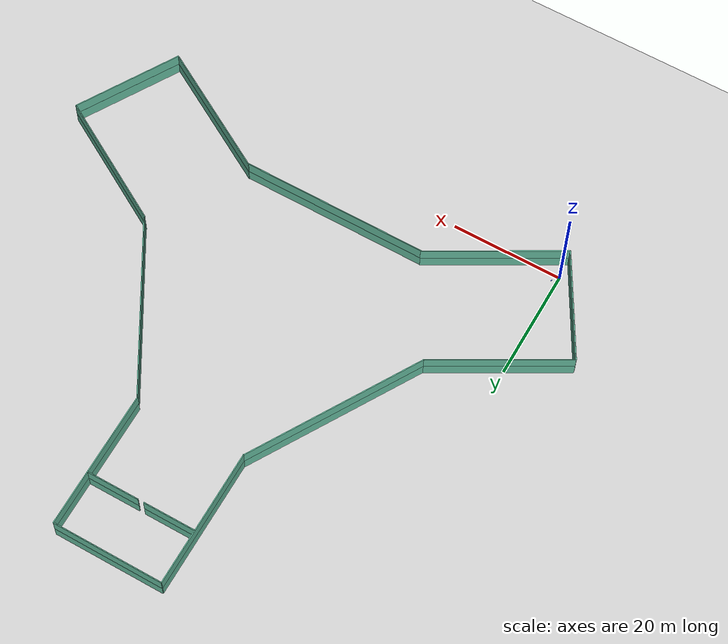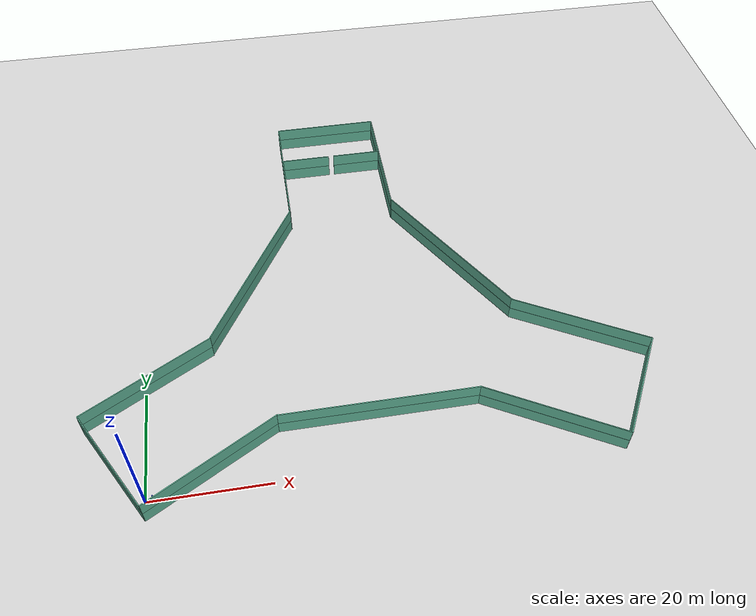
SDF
<sdf version="1.6">
 <world name="default">
  <light name="sun" type="directional">
   <pose>0 0 10 0 -0 0</pose>
   <diffuse>0.8 0.8 0.8 1</diffuse>
   <specular>0.2 0.2 0.2 1</specular>
   <attenuation>
    <range>1000</range>
    <constant>0.9</constant>
    <linear>0.01</linear>
    <quadratic>0.001</quadratic>
   </attenuation>
   <direction>-0.5 0.1 -0.9</direction>
  </light>
  <model name="ground_plane">
   <static>1</static>
   <link name="link">
    <collision name="collision">
     <geometry><plane><normal>0 0 1</normal><size>100 100</size></plane></geometry>
     <surface>
      <contact><collide_bitmask>65535</collide_bitmask></contact>
      <friction><ode><mu>100</mu><mu2>50</mu2></ode></friction>
     </surface>
    </collision>
    <visual name="visual">
     <cast_shadows>0</cast_shadows>
     <geometry><plane><normal>0 0 1</normal><size>100 100</size></plane></geometry>
     <material>
      <script><uri>file://media/materials/scripts/gazebo.material</uri><name>Gazebo/Grey</name></script>
     </material>
    </visual>
   </link>
  </model>
  <gravity>0 0 -9.8</gravity>
  <magnetic_field>6e-06 2.3e-05 -4.2e-05</magnetic_field>
  <atmosphere type="adiabatic"/>
  <physics name="default_physics" default="0" type="ode">
   <max_step_size>0.001</max_step_size>
   <real_time_factor>1</real_time_factor>
   <real_time_update_rate>1000</real_time_update_rate>
  </physics>
  <scene><ambient>0.4 0.4 0.4 1</ambient><background>0.7 0.7 0.7 1</background><shadows>1</shadows></scene>
  <spherical_coordinates>
   <surface_model>EARTH_WGS84</surface_model>
   <latitude_deg>0</latitude_deg>
   <longitude_deg>0</longitude_deg>
   <elevation>0</elevation>
   <heading_deg>0</heading_deg>
  </spherical_coordinates>
  <physics name="default_physics" default="0" type="ode">
   <ode>
    <solver>
     <type>quick</type>
     <iters>20</iters>
     <sor>1.3</sor>
     <use_dynamic_moi_rescaling>0</use_dynamic_moi_rescaling>
    </solver>
    <constraints>
     <cfm>0</cfm>
     <erp>0.2</erp>
     <contact_max_correcting_vel>100</contact_max_correcting_vel>
     <contact_surface_layer>0.001</contact_surface_layer>
    </constraints>
   </ode>
   <max_step_size>0.002</max_step_size>
   <real_time_factor>1</real_time_factor>
   <real_time_update_rate>500</real_time_update_rate>
  </physics>
  <audio><device>default</device></audio>
  <model name="empty_room">
   <pose>38.3002 30.574 0 0 -0 0</pose>
   <link name="Wall_0">
    <collision name="Wall_0_Collision">
     <geometry><box><size>20 0.15 2.5</size></box></geometry>
     <pose>0 0 1.25 0 -0 0</pose>
    </collision>
    <visual name="Wall_0_Visual">
     <pose>0 0 1.25 0 -0 0</pose>
     <geometry><box><size>20 0.15 2.5</size></box></geometry>
     <material>
      <script><uri>file://media/materials/scripts/gazebo.material</uri><name>Gazebo/Grey</name></script>
      <ambient>0.435294 0.796078 0.67451 1</ambient>
     </material>
     <meta><layer>0</layer></meta>
    </visual>
    <pose>0 50 0 0 -0 0</pose>
   </link>
   <link name="Wall_1">
    <collision name="Wall_1_Collision">
     <geometry><box><size>20 0.15 2.5</size></box></geometry>
     <pose>0 0 1.25 0 -0 0</pose>
    </collision>
    <visual name="Wall_1_Visual">
     <pose>0 0 1.25 0 -0 0</pose>
     <geometry><box><size>20 0.15 2.5</size></box></geometry>
     <material>
      <script><uri>file://media/materials/scripts/gazebo.material</uri><name>Gazebo/Grey</name></script>
      <ambient>0.435294 0.796078 0.67451 1</ambient>
     </material>
     <meta><layer>0</layer></meta>
    </visual>
    <pose>-43.3013 -25 0 0 -0 2.0944</pose>
   </link>
   <link name="Wall_2">
    <collision name="Wall_2_Collision">
     <geometry><box><size>20 0.15 2.5</size></box></geometry>
     <pose>0 0 1.25 0 -0 0</pose>
    </collision>
    <visual name="Wall_2_Visual">
     <pose>0 0 1.25 0 -0 0</pose>
     <geometry><box><size>20 0.15 2.5</size></box></geometry>
     <material>
      <script><uri>file://media/materials/scripts/gazebo.material</uri><name>Gazebo/Grey</name></script>
      <ambient>0.435294 0.796078 0.67451 1</ambient>
     </material>
     <meta><layer>0</layer></meta>
    </visual>
    <pose>43.3013 -25 0 0 0 -2.0944</pose>
   </link>
   <link name="Wall_3">
    <collision name="Wall_3_Collision">
     <geometry><box><size>0.15 25 2.5</size></box></geometry>
     <pose>-10 0 1.25 0 -0 0</pose>
    </collision>
    <visual name="Wall_3_Visual">
     <pose>-10 0 1.25 0 -0 0</pose>
     <geometry><box><size>0.15 25 2.5</size></box></geometry>
     <material>
      <script><uri>file://media/materials/scripts/gazebo.material</uri><name>Gazebo/Grey</name></script>
      <ambient>0.435294 0.796078 0.67451 1</ambient>
     </material>
     <meta><layer>0</layer></meta>
    </visual>
    <pose>0 37.5 0 0 -0 0</pose>
   </link>
   <link name="Wall_4">
    <collision name="Wall_4_Collision">
     <geometry><box><size>0.15 25 2.5</size></box></geometry>
     <pose>10 0 1.25 0 -0 0</pose>
    </collision>
    <visual name="Wall_4_Visual">
     <pose>10 0 1.25 0 -0 0</pose>
     <geometry><box><size>0.15 25 2.5</size></box></geometry>
     <material>
      <script><uri>file://media/materials/scripts/gazebo.material</uri><name>Gazebo/Grey</name></script>
      <ambient>0.435294 0.796078 0.67451 1</ambient>
     </material>
     <meta><layer>0</layer></meta>
    </visual>
    <pose>0 37.5 0 0 -0 0</pose>
   </link>
   <link name="Wall_5">
    <collision name="Wall_5_Collision">
     <geometry><box><size>0.15 25 2.5</size></box></geometry>
     <pose>-10 37.5 1.25 0 -0 0</pose>
    </collision>
    <visual name="Wall_5_Visual">
     <pose>-10 37.5 1.25 0 -0 0</pose>
     <geometry><box><size>0.15 25 2.5</size></box></geometry>
     <material>
      <script><uri>file://media/materials/scripts/gazebo.material</uri><name>Gazebo/Grey</name></script>
      <ambient>0.435294 0.796078 0.67451 1</ambient>
     </material>
     <meta><layer>0</layer></meta>
    </visual>
    <pose>0 0 0 0 -0 2.0944</pose>
   </link>
   <link name="Wall_6">
    <collision name="Wall_6_Collision">
     <geometry><box><size>0.15 25 2.5</size></box></geometry>
     <pose>10 37.5 1.25 0 -0 0</pose>
    </collision>
    <visual name="Wall_6_Visual">
     <pose>10 37.5 1.25 0 -0 0</pose>
     <geometry><box><size>0.15 25 2.5</size></box></geometry>
     <material>
      <script><uri>file://media/materials/scripts/gazebo.material</uri><name>Gazebo/Grey</name></script>
      <ambient>0.435294 0.796078 0.67451 1</ambient>
     </material>
     <meta><layer>0</layer></meta>
    </visual>
    <pose>0 0 0 0 -0 2.0944</pose>
   </link>
   <link name="Wall_7">
    <collision name="Wall_7_Collision">
     <geometry><box><size>0.15 25 2.5</size></box></geometry>
     <pose>-10 37.5 1.25 0 -0 0</pose>
    </collision>
    <visual name="Wall_7_Visual">
     <pose>-10 37.5 1.25 0 -0 0</pose>
     <geometry><box><size>0.15 25 2.5</size></box></geometry>
     <material>
      <script><uri>file://media/materials/scripts/gazebo.material</uri><name>Gazebo/Grey</name></script>
      <ambient>0.435294 0.796078 0.67451 1</ambient>
     </material>
     <meta><layer>0</layer></meta>
    </visual>
    <pose>0 0 0 0 0 -2.0944</pose>
   </link>
   <link name="Wall_8">
    <collision name="Wall_8_Collision">
     <geometry><box><size>0.15 25 2.5</size></box></geometry>
     <pose>10 37.5 1.25 0 -0 0</pose>
    </collision>
    <visual name="Wall_8_Visual">
     <pose>10 37.5 1.25 0 -0 0</pose>
     <geometry><box><size>0.15 25 2.5</size></box></geometry>
     <material>
      <script><uri>file://media/materials/scripts/gazebo.material</uri><name>Gazebo/Grey</name></script>
      <ambient>0.435294 0.796078 0.67451 1</ambient>
     </material>
     <meta><layer>0</layer></meta>
    </visual>
    <pose>0 0 0 0 0 -2.0944</pose>
   </link>
   <link name="Wall_9">
    <collision name="Wall_9_Collision">
     <geometry><box><size>33.5 0.15 2.5</size></box></geometry>
     <pose>0 -21.25 1.25 0 -0 0</pose>
    </collision>
    <visual name="Wall_9_Visual">
     <pose>0 -21.25 1.25 0 -0 0</pose>
     <geometry><box><size>33.5 0.15 2.5</size></box></geometry>
     <material>
      <script><uri>file://media/materials/scripts/gazebo.material</uri><name>Gazebo/Grey</name></script>
      <ambient>0.435294 0.796078 0.67451 1</ambient>
     </material>
     <meta><layer>0</layer></meta>
    </visual>
    <pose>0 0 0 0 -0 -2.0944</pose>
   </link>
   <link name="Wall_10">
    <collision name="Wall_10_Collision">
     <geometry><box><size>33.5 0.15 2.5</size></box></geometry>
     <pose>0 -21.25 1.25 0 -0 0</pose>
    </collision>
    <visual name="Wall_10_Visual">
     <pose>0 -21.25 1.25 0 -0 0</pose>
     <geometry><box><size>33.5 0.15 2.5</size></box></geometry>
     <material>
      <script><uri>file://media/materials/scripts/gazebo.material</uri><name>Gazebo/Grey</name></script>
      <ambient>0.435294 0.796078 0.67451 1</ambient>
     </material>
     <meta><layer>0</layer></meta>
    </visual>
    <pose>0 0 0 0 -0 2.0944</pose>
   </link>
   <link name="Wall_11">
    <collision name="Wall_11_Collision">
     <geometry><box><size>33.5 0.15 2.5</size></box></geometry>
     <pose>0 -21.25 1.25 0 -0 0</pose>
    </collision>
    <visual name="Wall_11_Visual">
     <pose>0 -21.25 1.25 0 -0 0</pose>
     <geometry><box><size>33.5 0.15 2.5</size></box></geometry>
     <material>
      <script><uri>file://media/materials/scripts/gazebo.material</uri><name>Gazebo/Grey</name></script>
      <ambient>0.435294 0.796078 0.67451 1</ambient>
     </material>
     <meta><layer>0</layer></meta>
    </visual>
   </link>
   <link name="Wall_12">
    <collision name="Wall_12_Collision">
     <geometry><box><size>9.5 0.15 2.5</size></box></geometry>
     <pose>0 0 1.25 0 -0 0</pose>
    </collision>
    <visual name="Wall_12_Visual">
     <pose>0 0 1.25 0 -0 0</pose>
     <geometry><box><size>9.5 0.15 2.5</size></box></geometry>
     <material>
      <script><uri>file://media/materials/scripts/gazebo.material</uri><name>Gazebo/Grey</name></script>
      <ambient>0.435294 0.796078 0.67451 1</ambient>
     </material>
     <meta><layer>0</layer></meta>
    </visual>
    <pose>-5.25 40 0 0 -0 0</pose>
   </link>
   <link name="Wall_13">
    <collision name="Wall_13_Collision">
     <geometry><box><size>9.5 0.15 2.5</size></box></geometry>
     <pose>0 0 1.25 0 -0 0</pose>
    </collision>
    <visual name="Wall_13_Visual">
     <pose>0 0 1.25 0 -0 0</pose>
     <geometry><box><size>9.5 0.15 2.5</size></box></geometry>
     <material>
      <script><uri>file://media/materials/scripts/gazebo.material</uri><name>Gazebo/Grey</name></script>
      <ambient>0.435294 0.796078 0.67451 1</ambient>
     </material>
     <meta><layer>0</layer></meta>
    </visual>
    <pose>5.25 40 0 0 -0 0</pose>
   </link>
   <static>1</static>
  </model>
  <model name="empty_room_clone">
   <pose>38.3081 30.5777 2.42776 0 -0 0</pose>
   <link name="Wall_0">
    <collision name="Wall_0_Collision">
     <geometry><box><size>20 0.15 2.5</size></box></geometry>
     <pose>0 0 1.25 0 -0 0</pose>
    </collision>
    <visual name="Wall_0_Visual">
     <pose>0 0 1.25 0 -0 0</pose>
     <geometry><box><size>20 0.15 2.5</size></box></geometry>
     <material>
      <script><uri>file://media/materials/scripts/gazebo.material</uri><name>Gazebo/Grey</name></script>
      <ambient>0.435294 0.796078 0.67451 1</ambient>
     </material>
     <meta><layer>0</layer></meta>
    </visual>
    <pose>0 50 0 0 -0 0</pose>
   </link>
   <link name="Wall_1">
    <collision name="Wall_1_Collision">
     <geometry><box><size>20 0.15 2.5</size></box></geometry>
     <pose>0 0 1.25 0 -0 0</pose>
    </collision>
    <visual name="Wall_1_Visual">
     <pose>0 0 1.25 0 -0 0</pose>
     <geometry><box><size>20 0.15 2.5</size></box></geometry>
     <material>
      <script><uri>file://media/materials/scripts/gazebo.material</uri><name>Gazebo/Grey</name></script>
      <ambient>0.435294 0.796078 0.67451 1</ambient>
     </material>
     <meta><layer>0</layer></meta>
    </visual>
    <pose>-43.3013 -25 0 0 -0 2.0944</pose>
   </link>
   <link name="Wall_2">
    <collision name="Wall_2_Collision">
     <geometry><box><size>20 0.15 2.5</size></box></geometry>
     <pose>0 0 1.25 0 -0 0</pose>
    </collision>
    <visual name="Wall_2_Visual">
     <pose>0 0 1.25 0 -0 0</pose>
     <geometry><box><size>20 0.15 2.5</size></box></geometry>
     <material>
      <script><uri>file://media/materials/scripts/gazebo.material</uri><name>Gazebo/Grey</name></script>
      <ambient>0.435294 0.796078 0.67451 1</ambient>
     </material>
     <meta><layer>0</layer></meta>
    </visual>
    <pose>43.3013 -25 0 0 0 -2.0944</pose>
   </link>
   <link name="Wall_3">
    <collision name="Wall_3_Collision">
     <geometry><box><size>0.15 25 2.5</size></box></geometry>
     <pose>-10 0 1.25 0 -0 0</pose>
    </collision>
    <visual name="Wall_3_Visual">
     <pose>-10 0 1.25 0 -0 0</pose>
     <geometry><box><size>0.15 25 2.5</size></box></geometry>
     <material>
      <script><uri>file://media/materials/scripts/gazebo.material</uri><name>Gazebo/Grey</name></script>
      <ambient>0.435294 0.796078 0.67451 1</ambient>
     </material>
     <meta><layer>0</layer></meta>
    </visual>
    <pose>0 37.5 0 0 -0 0</pose>
   </link>
   <link name="Wall_4">
    <collision name="Wall_4_Collision">
     <geometry><box><size>0.15 25 2.5</size></box></geometry>
     <pose>10 0 1.25 0 -0 0</pose>
    </collision>
    <visual name="Wall_4_Visual">
     <pose>10 0 1.25 0 -0 0</pose>
     <geometry><box><size>0.15 25 2.5</size></box></geometry>
     <material>
      <script><uri>file://media/materials/scripts/gazebo.material</uri><name>Gazebo/Grey</name></script>
      <ambient>0.435294 0.796078 0.67451 1</ambient>
     </material>
     <meta><layer>0</layer></meta>
    </visual>
    <pose>0 37.5 0 0 -0 0</pose>
   </link>
   <link name="Wall_5">
    <collision name="Wall_5_Collision">
     <geometry><box><size>0.15 25 2.5</size></box></geometry>
     <pose>-10 37.5 1.25 0 -0 0</pose>
    </collision>
    <visual name="Wall_5_Visual">
     <pose>-10 37.5 1.25 0 -0 0</pose>
     <geometry><box><size>0.15 25 2.5</size></box></geometry>
     <material>
      <script><uri>file://media/materials/scripts/gazebo.material</uri><name>Gazebo/Grey</name></script>
      <ambient>0.435294 0.796078 0.67451 1</ambient>
     </material>
     <meta><layer>0</layer></meta>
    </visual>
    <pose>0 0 0 0 -0 2.0944</pose>
   </link>
   <link name="Wall_6">
    <collision name="Wall_6_Collision">
     <geometry><box><size>0.15 25 2.5</size></box></geometry>
     <pose>10 37.5 1.25 0 -0 0</pose>
    </collision>
    <visual name="Wall_6_Visual">
     <pose>10 37.5 1.25 0 -0 0</pose>
     <geometry><box><size>0.15 25 2.5</size></box></geometry>
     <material>
      <script><uri>file://media/materials/scripts/gazebo.material</uri><name>Gazebo/Grey</name></script>
      <ambient>0.435294 0.796078 0.67451 1</ambient>
     </material>
     <meta><layer>0</layer></meta>
    </visual>
    <pose>0 0 0 0 -0 2.0944</pose>
   </link>
   <link name="Wall_7">
    <collision name="Wall_7_Collision">
     <geometry><box><size>0.15 25 2.5</size></box></geometry>
     <pose>-10 37.5 1.25 0 -0 0</pose>
    </collision>
    <visual name="Wall_7_Visual">
     <pose>-10 37.5 1.25 0 -0 0</pose>
     <geometry><box><size>0.15 25 2.5</size></box></geometry>
     <material>
      <script><uri>file://media/materials/scripts/gazebo.material</uri><name>Gazebo/Grey</name></script>
      <ambient>0.435294 0.796078 0.67451 1</ambient>
     </material>
     <meta><layer>0</layer></meta>
    </visual>
    <pose>0 0 0 0 0 -2.0944</pose>
   </link>
   <link name="Wall_8">
    <collision name="Wall_8_Collision">
     <geometry><box><size>0.15 25 2.5</size></box></geometry>
     <pose>10 37.5 1.25 0 -0 0</pose>
    </collision>
    <visual name="Wall_8_Visual">
     <pose>10 37.5 1.25 0 -0 0</pose>
     <geometry><box><size>0.15 25 2.5</size></box></geometry>
     <material>
      <script><uri>file://media/materials/scripts/gazebo.material</uri><name>Gazebo/Grey</name></script>
      <ambient>0.435294 0.796078 0.67451 1</ambient>
     </material>
     <meta><layer>0</layer></meta>
    </visual>
    <pose>0 0 0 0 0 -2.0944</pose>
   </link>
   <link name="Wall_9">
    <collision name="Wall_9_Collision">
     <geometry><box><size>33.5 0.15 2.5</size></box></geometry>
     <pose>0 -21.25 1.25 0 -0 0</pose>
    </collision>
    <visual name="Wall_9_Visual">
     <pose>0 -21.25 1.25 0 -0 0</pose>
     <geometry><box><size>33.5 0.15 2.5</size></box></geometry>
     <material>
      <script><uri>file://media/materials/scripts/gazebo.material</uri><name>Gazebo/Grey</name></script>
      <ambient>0.435294 0.796078 0.67451 1</ambient>
     </material>
     <meta><layer>0</layer></meta>
    </visual>
    <pose>0 0 0 0 -0 -2.0944</pose>
   </link>
   <link name="Wall_10">
    <collision name="Wall_10_Collision">
     <geometry><box><size>33.5 0.15 2.5</size></box></geometry>
     <pose>0 -21.25 1.25 0 -0 0</pose>
    </collision>
    <visual name="Wall_10_Visual">
     <pose>0 -21.25 1.25 0 -0 0</pose>
     <geometry><box><size>33.5 0.15 2.5</size></box></geometry>
     <material>
      <script><uri>file://media/materials/scripts/gazebo.material</uri><name>Gazebo/Grey</name></script>
      <ambient>0.435294 0.796078 0.67451 1</ambient>
     </material>
     <meta><layer>0</layer></meta>
    </visual>
    <pose>0 0 0 0 -0 2.0944</pose>
   </link>
   <link name="Wall_11">
    <collision name="Wall_11_Collision">
     <geometry><box><size>33.5 0.15 2.5</size></box></geometry>
     <pose>0 -21.25 1.25 0 -0 0</pose>
    </collision>
    <visual name="Wall_11_Visual">
     <pose>0 -21.25 1.25 0 -0 0</pose>
     <geometry><box><size>33.5 0.15 2.5</size></box></geometry>
     <material>
      <script><uri>file://media/materials/scripts/gazebo.material</uri><name>Gazebo/Grey</name></script>
      <ambient>0.435294 0.796078 0.67451 1</ambient>
     </material>
     <meta><layer>0</layer></meta>
    </visual>
   </link>
   <link name="Wall_12">
    <collision name="Wall_12_Collision">
     <geometry><box><size>9.5 0.15 2.5</size></box></geometry>
     <pose>0 0 1.25 0 -0 0</pose>
    </collision>
    <visual name="Wall_12_Visual">
     <pose>0 0 1.25 0 -0 0</pose>
     <geometry><box><size>9.5 0.15 2.5</size></box></geometry>
     <material>
      <script><uri>file://media/materials/scripts/gazebo.material</uri><name>Gazebo/Grey</name></script>
      <ambient>0.435294 0.796078 0.67451 1</ambient>
     </material>
     <meta><layer>0</layer></meta>
    </visual>
    <pose>-5.25 40 0 0 -0 0</pose>
   </link>
   <link name="Wall_13">
    <collision name="Wall_13_Collision">
     <geometry><box><size>9.5 0.15 2.5</size></box></geometry>
     <pose>0 0 1.25 0 -0 0</pose>
    </collision>
    <visual name="Wall_13_Visual">
     <pose>0 0 1.25 0 -0 0</pose>
     <geometry><box><size>9.5 0.15 2.5</size></box></geometry>
     <material>
      <script><uri>file://media/materials/scripts/gazebo.material</uri><name>Gazebo/Grey</name></script>
      <ambient>0.435294 0.796078 0.67451 1</ambient>
     </material>
     <meta><layer>0</layer></meta>
    </visual>
    <pose>5.25 40 0 0 -0 0</pose>
   </link>
   <static>1</static>
  </model>
  <model name="router_0">
   <pose>0 1 0 0 0 0</pose>
   <link name="router_0">
    <collision name="router_0_Collision">
     <geometry><box><size>0.2 0.2 0.05</size></box></geometry>
     <pose>0 0 0.025 0 -0 0</pose>
    </collision>
    <visual name="router_0_Visual">
     <pose>0 0 0.025 0 -0 0</pose>
     <geometry><box><size>0.2 0.2 0.05</size></box></geometry>
     <material>
      <script><uri>file://media/materials/scripts/gazebo.material</uri><name>Gazebo/Blue</name></script>
      <ambient>1 1 1 1</ambient>
     </material>
     <meta><layer>0</layer></meta>
    </visual>
   </link>
   <plugin name="router_0" filename="librouter.so">
    <topicName>router</topicName>
    <updateRate>10.0</updateRate>
    <range>10</range>
   </plugin>
   <static>1</static>
  </model>
  <model name="router_1">
   <pose>1 1 0 0 0 0</pose>
   <link name="router_1">
    <collision name="router_1_Collision">
     <geometry><box><size>0.2 0.2 0.05</size></box></geometry>
     <pose>0 0 0.025 0 -0 0</pose>
    </collision>
    <visual name="router_1_Visual">
     <pose>0 0 0.025 0 -0 0</pose>
     <geometry><box><size>0.2 0.2 0.05</size></box></geometry>
     <material>
      <script><uri>file://media/materials/scripts/gazebo.material</uri><name>Gazebo/Blue</name></script>
      <ambient>1 1 1 1</ambient>
     </material>
     <meta><layer>0</layer></meta>
    </visual>
   </link>
   <plugin name="router_1" filename="librouter.so">
    <topicName>router</topicName>
    <updateRate>10.0</updateRate>
    <range>10</range>
   </plugin>
   <static>1</static>
  </model>
 </world>
</sdf>
